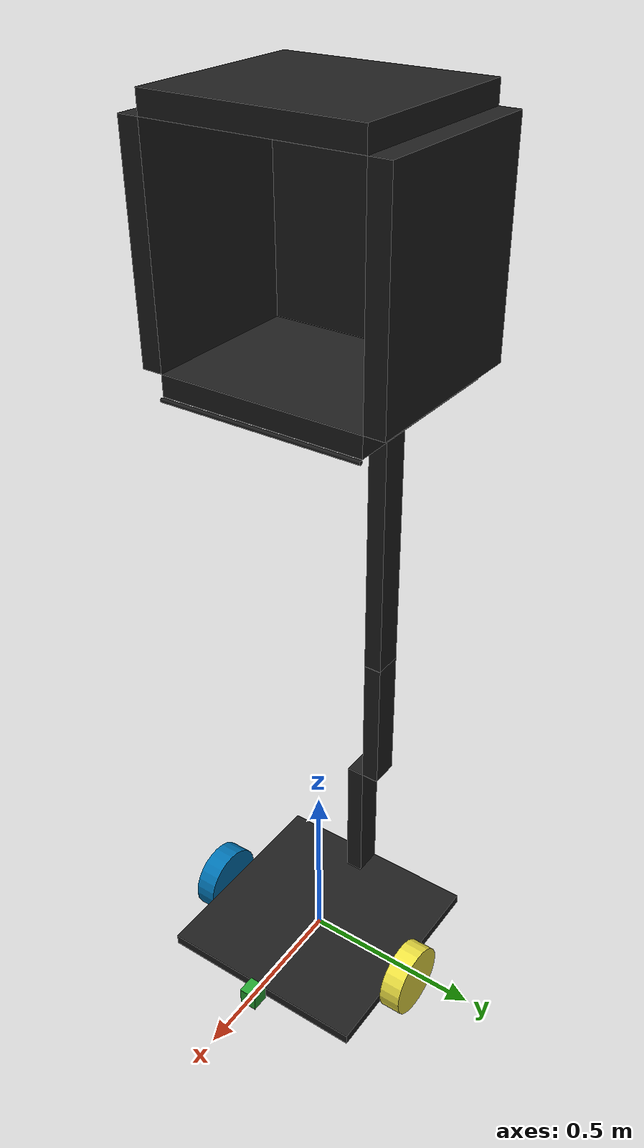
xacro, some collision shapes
<?xml version="1.0" ?>
<robot name="turtlebot3_waffle" xmlns:xacro="http://ros.org/wiki/xacro">
  <!--xacro:include filename="$(find mybot_description)/urdf/robot_model/common_properties.xacro"/-->
  <xacro:include filename="$(find mybot_description)/urdf/robot_model/bot.gazebo.xacro"/>

  <xacro:property name="base_mass" value= "6" />
  <xacro:property name="wheel_mass" value= "0.01" />
  <xacro:property name="default_mass" value= "0.0001" />

   <xacro:property name="base_x" value= "0.6" />
   <xacro:property name="base_y" value="0.6" />
   <xacro:property name="base_z" value="0.03" />

  <xacro:property name="castor_x" value="0.02" />
   <xacro:property name="castor_y" value="${wheel_rad - base_z}" />
   <xacro:property name="castor_z" value="0.02" />

   <xacro:property name="wheel_rad" value="0.1" />
   <xacro:property name="wheel_len" value="0.06" />

   <xacro:property name="arm_base_x" value="${bucket_depth - 0.05}" />
   <xacro:property name="arm_base_y" value="0.05" />
   <xacro:property name="arm_base_z" value="0.08" />

   <xacro:property name="slider_x" value= "${arm_base_z}" />
   <xacro:property name="slider_y" value="${arm_base_y}" />
   <xacro:property name="slider_z" value="0.4" />

  <xacro:property name="arm_x" value="1.2" />
   <xacro:property name="arm_y" value="0.05" />
   <xacro:property name="arm_z" value="0.08" />

   <xacro:property name="bucket_depth" value="0.45" />

   <xacro:property name="bucket_base_x" value="0.05" />
   <xacro:property name="bucket_base_y" value="0.5" />
   <xacro:property name="bucket_base_z" value="0.5" />

  <xacro:property name="bucket_long_wall_x" value= "${bucket_base_y}" />
   <xacro:property name="bucket_long_wall_y" value="0.05" />
   <xacro:property name="bucket_long_wall_z" value="${bucket_depth}" />

  <xacro:property name="bucket_lat_wall_x" value= "0.05" />
   <xacro:property name="bucket_lat_wall_y" value="${bucket_base_y}" />
   <xacro:property name="bucket_lat_wall_z" value="${bucket_depth}" />

  <xacro:property name="ball_holder_x" value="0.0001" />
   <xacro:property name="ball_holder_y" value="${bucket_lat_wall_y}" />
   <xacro:property name="ball_holder_z" value="${bucket_lat_wall_x}" />

   <xacro:property name="ball_holder_rad" value="0.005" />
   <xacro:property name="ball_holder_len" value="${bucket_lat_wall_y}" />

  <xacro:property name="arm_origin" value="0 0 0" />
  <xacro:property name="bucket_base_dim" value="0.05 0.6 0.6" />

  <xacro:property name="cameraSize" value="0.05"/>
  <xacro:property name="cameraMass" value="0.001"/>

  <link name="base_footprint"/>

  <joint name="base_joint" type="fixed">
    <parent link="base_footprint"/>
    <child link="base_link" />
    <origin xyz="0 0 0.010" rpy="0 0 0"/>
  </joint>

  <link name="base_link">
    <visual>
      <origin xyz="0 0 0.0" rpy="0 0 0"/>
      <geometry>
        <box size="${base_x} ${base_y} ${base_z}"/>
      </geometry>
      <material name="light_black"/>
    </visual>

    <collision>
      <origin xyz="-0.064 0 0.047" rpy="0 0 0"/>
      <geometry>
        <box size="${base_x} ${base_y} ${base_z}"/>
      </geometry>
    </collision>

    <inertial>
      <origin xyz="0 0 0" rpy="0 0 0"/>
      <mass value="${base_mass}"/>
      <inertia ixx="8.7002718e-02" ixy="-4.7576583e-04" ixz="1.1160499e-03"
               iyy="8.6195418e-02" iyz="-3.5422299e-05"
               izz="1.4612727e-01" />
    </inertial>
  </link>

<!-- **************arm_base********* -->
 <joint name="base_to_arm_base" type="fixed">
    <parent link="base_link"/>
    <child link="arm_base"/>
    <origin xyz="${-base_x*0.5 + arm_base_z*0.5} ${-slider_y*0.5} ${base_z*0.5 + arm_base_x*0.5}" rpy="0 -1.57 0"/>
  </joint>
 <link name="arm_base">
    <visual>
      <origin xyz="0 0 0.0" rpy="0 0 0"/>
      <geometry>
        <box size="${arm_base_x} ${arm_base_y} ${arm_base_z}"/>
      </geometry>
      <material name="light_black"/>
    </visual>

    <collision>
      <origin xyz="0 0 0.0" rpy="0 0 0"/>
      <geometry>
        <box size="${arm_base_x} ${arm_base_y} ${arm_base_z}"/>
      </geometry>
    </collision>

    <inertial>
      <origin xyz="0 0 0" rpy="0 0 0"/>
      <mass value="${default_mass}"/>
      <inertia ixx="8.7002718e-03" ixy="-4.7576583e-05" ixz="1.1160499e-04"
               iyy="8.6195418e-03" iyz="-3.5422299e-06"
               izz="1.4612727e-02" />
    </inertial>
  </link>

<!-- **************slider********* -->
<joint name="arm_base_to_slider" type="prismatic">
    <parent link="arm_base"/>
    <child link="slider"/>
    <axis xyz="0 0 1"/>
    <limit effort="1000.0" lower="${-slider_z}" upper="0" velocity="0.5"/>
    <origin xyz="${arm_base_x*0.5 + slider_z} ${arm_base_y*0.5 + arm_y*0.5} 0" rpy="0 1.57 0"/>
  </joint>

 <link name="slider">
    <visual>
      <origin xyz="0 0 ${-slider_z*0.5}" rpy="0 0 0"/>
      <geometry>
        <box size="${slider_x} ${slider_y} ${slider_z}"/>
      </geometry>
      <material name="light_black"/>
    </visual>

    <collision>
      <origin xyz="0 0 ${-slider_z*0.5}" rpy="0 0 0"/>
      <geometry>
        <box size="${slider_x} ${slider_y} ${slider_z}"/>
      </geometry>
    </collision>

    <inertial>
      <origin xyz="0 0 0" rpy="0 0 0"/>
      <mass value="${default_mass}"/>
      <inertia ixx="8.7002718e-03" ixy="-4.7576583e-05" ixz="1.1160499e-04"
               iyy="8.6195418e-03" iyz="-3.5422299e-06"
               izz="1.4612727e-02" />
    </inertial>
  </link>

<transmission name="slider_trans">
    <type>transmission_interface/SimpleTransmission</type>
    <actuator name="slider_motor">
      <mechanicalReduction>1</mechanicalReduction>
    <hardwareInterface>EffortJointInterface</hardwareInterface>
    </actuator>
    <joint name="arm_base_to_slider">
    <hardwareInterface>EffortJointInterface</hardwareInterface>
    </joint>
  </transmission>

<!-- **************arm********* -->
 <joint name="slider_to_arm" type="revolute">
    <parent link="slider"/>
    <child link="arm"/>
    <axis xyz="0 1 0"/>
    <limit effort="1000.0" lower="0.0" upper="1.57" velocity="0.1"/>
    <origin xyz="0 0 0" rpy="0 -1.57 0"/>
  </joint>

 <link name="arm">
    <visual>
      <origin xyz="${arm_x*0.5} 0 0.0" rpy="0 0 0"/>
      <geometry>
        <box size="${arm_x} ${arm_y} ${arm_z}"/>
      </geometry>
      <material name="light_black"/>
    </visual>

    <collision>
      <origin xyz="${arm_x*0.5} 0 0.0" rpy="0 0 0"/>
      <geometry>
        <box size="${arm_x} ${arm_y} ${arm_z}"/>
      </geometry>
    </collision>

    <inertial>
      <origin xyz="0 0 0" rpy="0 0 0"/>
      <mass value="${default_mass}"/>
      <inertia ixx="8.7002718e-03" ixy="-4.7576583e-05" ixz="1.1160499e-04"
               iyy="8.6195418e-03" iyz="-3.5422299e-06"
               izz="1.4612727e-02" />
    </inertial>
  </link>

<transmission name="arm_trans">
    <type>transmission_interface/SimpleTransmission</type>
    <actuator name="arm_motor">
    <hardwareInterface>EffortJointInterface</hardwareInterface>
      <mechanicalReduction>1</mechanicalReduction>
    </actuator>
    <joint name="slider_to_arm">
    <hardwareInterface>EffortJointInterface</hardwareInterface>
    </joint>
  </transmission>

<!-- **************bucket_base********* -->
 <joint name="arm_to_bucket_base" type="fixed">
    <parent link="arm"/>
    <child link="bucket_base"/>
    <origin xyz="${arm_x} 0 ${-arm_z*0.5 -bucket_base_x*0.5}" rpy="0 -1.57 0"/>
  </joint>
 <link name="bucket_base">
    <visual>
      <origin xyz="0 0 0.0" rpy="0 0 0"/>
      <geometry>
        <box size="${bucket_base_x} ${bucket_base_y} ${bucket_base_z}"/>
      </geometry>
      <material name="light_black"/>
    </visual>

    <collision>
      <origin xyz="0 0 0.0" rpy="0 0 0"/>
      <geometry>
        <box size="${bucket_base_x} ${bucket_base_y} ${bucket_base_z}"/>
      </geometry>
    </collision>

    <inertial>
      <origin xyz="0 0 0" rpy="0 0 0"/>
      <mass value="${default_mass}"/>
      <inertia ixx="8.7002718e-03" ixy="-4.7576583e-05" ixz="1.1160499e-04"
               iyy="8.6195418e-03" iyz="-3.5422299e-06"
               izz="1.4612727e-02" />
    </inertial>
  </link>

<!-- **************bucket_right_wall********* -->
 <joint name="bucket_base_to_right_wall" type="fixed">
    <parent link="bucket_base"/>
    <child link="bucket_right_wall"/>
    <origin xyz="${-bucket_long_wall_z*0.5 + bucket_base_x*0.5} ${bucket_base_z*0.5 + bucket_long_wall_y*0.5} 0" rpy="0 -1.57 0"/>
  </joint>
 <link name="bucket_right_wall">
    <visual>
      <origin xyz="0 0 0.0" rpy="0 0 0"/>
      <geometry>
        <box size="${bucket_long_wall_x} ${bucket_long_wall_y} ${bucket_long_wall_z}"/>
      </geometry>
      <material name="light_black"/>
    </visual>

    <collision>
      <origin xyz="0 0 0.0" rpy="0 0 0"/>
      <geometry>
        <box size="${bucket_long_wall_x} ${bucket_long_wall_y} ${bucket_long_wall_z}"/>
      </geometry>
    </collision>

    <inertial>
      <origin xyz="0 0 0" rpy="0 0 0"/>
      <mass value="${default_mass}"/>
      <inertia ixx="8.7002718e-03" ixy="-4.7576583e-05" ixz="1.1160499e-04"
               iyy="8.6195418e-03" iyz="-3.5422299e-06"
               izz="1.4612727e-02" />
    </inertial>
  </link>

<!-- **************bucket_left_wall********* -->
 <joint name="bucket_base_to_left_wall" type="fixed">
    <parent link="bucket_base"/>
    <child link="bucket_left_wall"/>
    <origin xyz="${-bucket_long_wall_z*0.5 + bucket_base_x*0.5} ${-bucket_base_z*0.5 - bucket_long_wall_y*0.5} 0" rpy="0 -1.57 0"/>
  </joint>
 <link name="bucket_left_wall">
    <visual>
      <origin xyz="0 0 0.0" rpy="0 0 0"/>
      <geometry>
        <box size="${bucket_long_wall_x} ${bucket_long_wall_y} ${bucket_long_wall_z}"/>
      </geometry>
      <material name="light_black"/>
    </visual>

    <collision>
      <origin xyz="0 0 0.0" rpy="0 0 0"/>
      <geometry>
        <box size="${bucket_long_wall_x} ${bucket_long_wall_y} ${bucket_long_wall_z}"/>
      </geometry>
    </collision>

    <inertial>
      <origin xyz="0 0 0" rpy="0 0 0"/>
      <mass value="${default_mass}"/>
      <inertia ixx="8.7002718e-03" ixy="-4.7576583e-05" ixz="1.1160499e-04"
               iyy="8.6195418e-03" iyz="-3.5422299e-06"
               izz="1.4612727e-02" />
    </inertial>
  </link>

<!-- **************bucket_fornt_wall********* -->
 <joint name="bucket_base_to_front_wall" type="fixed">
    <parent link="bucket_base"/>
    <child link="bucket_front_wall"/>
    <origin xyz="${-bucket_lat_wall_z*0.5 + bucket_base_x*0.5} 0 ${-bucket_base_z*0.5 - bucket_lat_wall_x*0.5}" rpy="0 -1.57 0"/>
  </joint>
 <link name="bucket_front_wall">
    <visual>
      <origin xyz="0 0 0.0" rpy="0 0 0"/>
      <geometry>
        <box size="${bucket_lat_wall_x} ${bucket_lat_wall_y} ${bucket_lat_wall_z}"/>
      </geometry>
      <material name="light_black"/>
    </visual>

    <collision>
      <origin xyz="0 0 0.0" rpy="0 0 0"/>
      <geometry>
        <box size="${bucket_lat_wall_x} ${bucket_lat_wall_y} ${bucket_lat_wall_z}"/>
      </geometry>
    </collision>

    <inertial>
      <origin xyz="0 0 0" rpy="0 0 0"/>
      <mass value="${default_mass}"/>
      <inertia ixx="8.7002718e-03" ixy="-4.7576583e-05" ixz="1.1160499e-04"
               iyy="8.6195418e-03" iyz="-3.5422299e-06"
               izz="1.4612727e-02" />
    </inertial>
  </link>

<!-- **************bucket_back_wall********* -->
 <joint name="bucket_base_to_back_wall" type="fixed">
    <parent link="bucket_base"/>
    <child link="bucket_back_wall"/>
    <origin xyz="${-bucket_lat_wall_z*0.5 + bucket_base_x*0.5} 0 ${bucket_base_z*0.5 + bucket_lat_wall_x*0.5}" rpy="0 -1.57 0"/>
  </joint>
 <link name="bucket_back_wall">
    <visual>
      <origin xyz="0 0 0.0" rpy="0 0 0"/>
      <geometry>
        <box size="${bucket_lat_wall_x} ${bucket_lat_wall_y} ${bucket_lat_wall_z}"/>
      </geometry>
      <material name="light_black"/>
    </visual>

    <collision>
      <origin xyz="0 0 0.0" rpy="0 0 0"/>
      <geometry>
        <box size="${bucket_lat_wall_x} ${bucket_lat_wall_y} ${bucket_lat_wall_z}"/>
      </geometry>
    </collision>

    <inertial>
      <origin xyz="0 0 0" rpy="0 0 0"/>
      <mass value="${default_mass}"/>
      <inertia ixx="8.7002718e-03" ixy="-4.7576583e-05" ixz="1.1160499e-04"
               iyy="8.6195418e-03" iyz="-3.5422299e-06"
               izz="1.4612727e-02" />
    </inertial>
  </link>

<!-- **************ball_holder********* -->
 <joint name="back_wall_to_ball_holder" type="revolute">
    <parent link="bucket_back_wall"/>
    <child link="ball_holder"/>
    <origin xyz="${bucket_lat_wall_x*0.5 + ball_holder_rad} ${bucket_lat_wall_y*0.5} ${bucket_lat_wall_z*0.5 + ball_holder_rad}" rpy="0 -1.57 0"/>
    <axis xyz="1 0 0"/>
    <limit effort="1000.0" lower="-0.785" upper="0" velocity="0.5"/>
  </joint>
 <link name="ball_holder">
    <visual>
      <origin xyz="0 ${-ball_holder_len*0.5} 0.0" rpy="-1.57 0 0"/>
      <geometry>
        <cylinder length="${ball_holder_len}" radius="${ball_holder_rad}"/>
      </geometry>
      <material name="light_black"/>
    </visual>

    <collision>
      <origin xyz="0 ${-ball_holder_len*0.5} 0.0" rpy="-1.57 0 0"/>
      <geometry>
        <cylinder length="${ball_holder_len}" radius="${ball_holder_rad}"/>
      </geometry>
    </collision>

    <inertial>
      <origin xyz="0 0 0" rpy="0 0 0"/>
      <mass value="${default_mass}"/>
      <inertia ixx="8.7002718e-03" ixy="-4.7576583e-05" ixz="1.1160499e-04"
               iyy="8.6195418e-03" iyz="-3.5422299e-06"
               izz="1.4612727e-02" />
    </inertial>
  </link>

<transmission name="ball_holder_trans">
    <type>transmission_interface/SimpleTransmission</type>
    <actuator name="holder_motor">
    <hardwareInterface>EffortJointInterface</hardwareInterface>
      <mechanicalReduction>1</mechanicalReduction>
    </actuator>
    <joint name="back_wall_to_ball_holder">
    <hardwareInterface>EffortJointInterface</hardwareInterface>
    </joint>
  </transmission>

<!-- **************left wheel********* -->

  <joint name="wheel_left_joint" type="continuous">
    <parent link="base_link"/>
    <child link="wheel_left_link"/>
    <origin xyz="${base_x*0.06} ${base_y*0.5 + wheel_len*0.5} 0.012" rpy="-1.57 0 0"/>
    <axis xyz="0 0 1"/>
  </joint>

  <link name="wheel_left_link">
    <visual>
      <origin xyz="0 0 0" rpy="0 0 0"/>
      <geometry>
        <cylinder length="${wheel_len}" radius="${wheel_rad}"/>
      </geometry>
      <material name="dark"/>
    </visual>

    <collision>
      <origin xyz="0 0 0" rpy="0 0 0"/>
      <geometry>
        <cylinder length="${wheel_len}" radius="${wheel_rad}"/>
      </geometry>
    </collision>

    <inertial>
      <origin xyz="0 0 0" />
      <mass value="${wheel_mass}" />
      <inertia ixx="1.1175580e-05" ixy="-4.2369783e-11" ixz="-5.9381719e-09"
               iyy="1.1192413e-05" iyz="-1.4400107e-11"
               izz="2.0712558e-05" />
      </inertial>
  </link>

<!-- **************right wheel********* -->
  <joint name="wheel_right_joint" type="continuous">
    <parent link="base_link"/>
    <child link="wheel_right_link"/>
    <origin xyz="${base_x*0.06} ${-base_y*0.5 - wheel_len*0.5} 0.012" rpy="-1.57 0 0"/>
    <axis xyz="0 0 1"/>
  </joint>

  <link name="wheel_right_link">
    <visual>
      <origin xyz="0 0 0" rpy="0 0 0"/>
      <geometry>
        <cylinder length="${wheel_len}" radius="${wheel_rad}"/>
      </geometry>
      <material name="dark"/>
    </visual>

    <collision>
      <origin xyz="0 0 0" rpy="0 0 0"/>
      <geometry>
        <cylinder length="${wheel_len}" radius="${wheel_rad}"/>
      </geometry>
    </collision>

    <inertial>
      <origin xyz="0 0 0" />
      <mass value="${wheel_mass}" />
      <inertia ixx="1.1175580e-05" ixy="-4.2369783e-11" ixz="-5.9381719e-09"
               iyy="1.1192413e-05" iyz="-1.4400107e-11"
               izz="2.0712558e-05" />
      </inertial>
  </link>

<!-- **************right_castor********* -->
  <joint name="caster_back_right_joint" type="fixed">
    <parent link="base_link"/>
    <child link="caster_back_right_link"/>
    <origin xyz="${-base_x*0.4} ${-base_y*0.4} ${-base_z*0.5 - castor_y*0.5}" rpy="-1.57 0 0"/>
  </joint>

  <link name="caster_back_right_link">
   <visual>
      <origin xyz="0 0 0" rpy="0 0 0"/>
      <geometry>
        <box size="${castor_x} ${castor_y} ${castor_z}"/>
      </geometry>
    </visual>
    <collision>
      <origin xyz="0 0 0" rpy="0 0 0"/>
      <geometry>
        <box size="${castor_x} ${castor_y} ${castor_z}"/>
      </geometry>
    </collision>

    <inertial>
      <origin xyz="0 0 0" />
      <mass value="${default_mass}"/>
      <inertia ixx="0.001" ixy="0.0" ixz="0.0"
               iyy="0.001" iyz="0.0"
               izz="0.001" />
    </inertial>
  </link>

   <!-- **************left_castor********* -->
  <joint name="caster_back_left_joint" type="fixed">
    <parent link="base_link"/>
    <child link="caster_back_left_link"/>
    <origin xyz="${-base_x*0.4} ${base_y*0.4} ${-base_z*0.5 - castor_y*0.5}" rpy="-1.57 0 0"/>
  </joint>

  <link name="caster_back_left_link">
 	<visual>
      <origin xyz="0 0.001 0" rpy="0 0 0"/>
      <geometry>
        <box size="${castor_x} ${castor_y} ${castor_z}"/>
      </geometry>
    </visual>
    <collision>
      <origin xyz="0 0.001 0" rpy="0 0 0"/>
      <geometry>
        <box size="${castor_x} ${castor_y} ${castor_z}"/>
      </geometry>
    </collision>

    <inertial>
      <origin xyz="0 0 0" />
      <mass value="${default_mass}"/>
      <inertia ixx="0.001" ixy="0.0" ixz="0.0"
               iyy="0.001" iyz="0.0"
               izz="0.001" />
    </inertial>
  </link>

  <joint name="imu_joint" type="fixed">
    <parent link="base_link"/>
    <child link="imu_link"/>
    <origin xyz="0.0 0 0.068" rpy="0 0 0"/>
  </joint>

  <link name="imu_link"/>

  <!-- **********************camera *************** -->

 <joint name="camera_joint" type="fixed">
    <axis xyz="0 1 0" />
    <origin xyz="${base_x*0.5 + cameraSize*0.5} 0 0" rpy="0 0 0"/>
    <parent link="base_link"/>
    <child link="camera"/>
  </joint>

 <link name="camera">
    <collision>
      <origin xyz="0 0 0" rpy="0 0 0"/>
      <geometry>
        <box size="${cameraSize} ${cameraSize} ${cameraSize}"/>
      </geometry>
    </collision>

    <visual>
      <origin xyz="0 0 0" rpy="0 0 0"/>
      <geometry>
        <box size="${cameraSize} ${cameraSize} ${cameraSize}"/>
      </geometry>
      <material name="green"/>
    </visual>

    <inertial>
      <mass value="${default_mass}" />
      <origin xyz="0 0 0" rpy="0 0 0"/>
      <box_inertia m="${cameraMass}" x="${cameraSize}" y="${cameraSize}" z="${cameraSize}" />
      <inertia ixx="1e-6" ixy="0" ixz="0" iyy="1e-6" iyz="0" izz="1e-6" />
    </inertial>
  </link>

  <!-- ******** Hokuyo Laser******* -->
<joint name="hokuyo_joint" type="fixed">
    <axis xyz="0 1 0" />
    <origin xyz="${base_x*0.4} 0 ${base_z*0.5 + cameraSize*0.5}" rpy="0 0 0"/>
    <parent link="base_link"/>
    <child link="hokuyo"/>
  </joint>

  <link name="hokuyo">
    <collision>
      <origin xyz="0 0 0" rpy="0 0 0"/>
      <geometry>
    <box size="0.001 0.001 0.001"/>
      </geometry>
    </collision>

    <visual>
      <origin xyz="0 0 0" rpy="0 0 0"/>
      <geometry>
        <mesh filename="package://mybot_description/meshes/hokuyo.dae"/>
      </geometry>
    </visual>

    <inertial>
      <mass value="1e-5" />
      <origin xyz="0 0 0" rpy="0 0 0"/>
      <inertia ixx="1e-6" ixy="0" ixz="0" iyy="1e-6" iyz="0" izz="1e-6" />
    </inertial>
  </link>

  <gazebo>
    <plugin name="gazebo_ros_control" filename="libgazebo_ros_control.so">
      <robotNamespace>/mybot</robotNamespace>
 	<legacyModeNS>1</legacyModeNS>
    <robotSimType>gazebo_ros_control/DefaultRobotHWSim</robotSimType>
    </plugin>
  </gazebo>

</robot>
